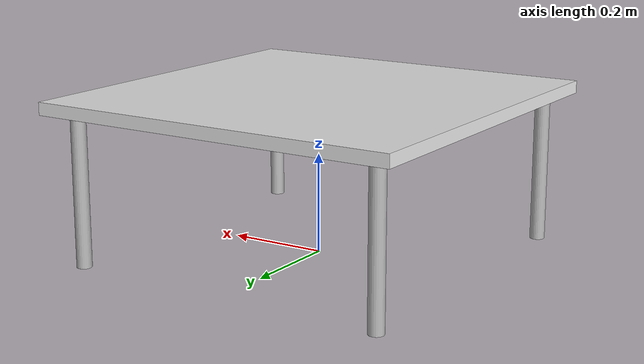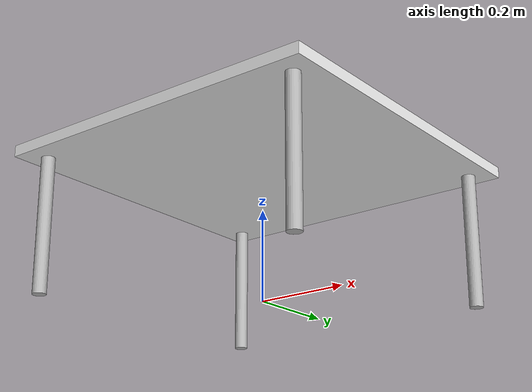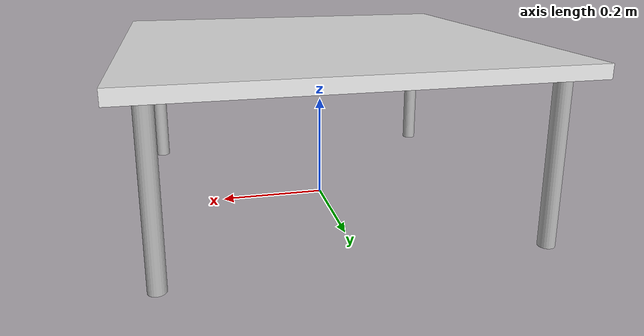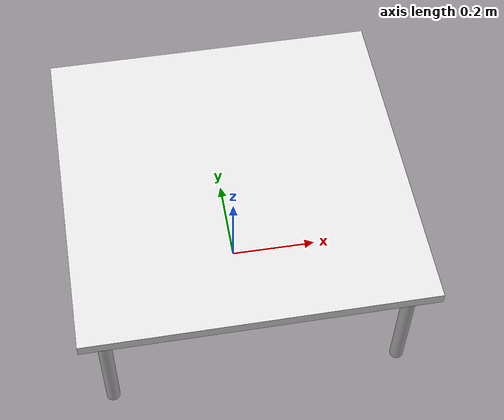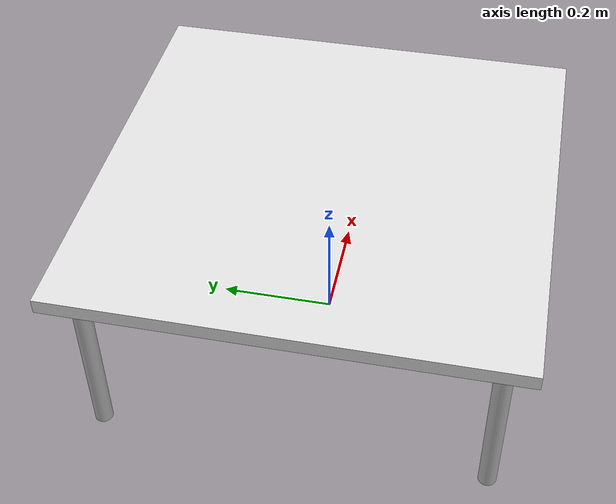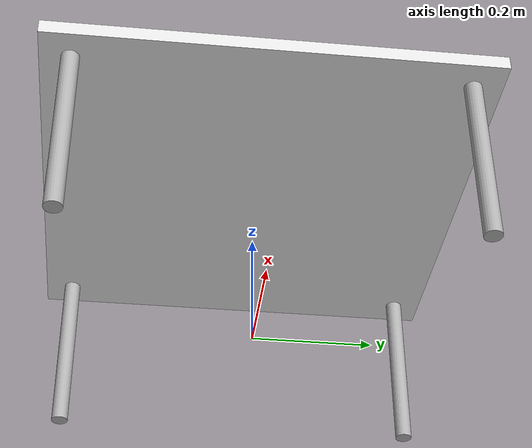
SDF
<?xml version='1.0'?>
<sdf version='1.7'>
  <model name='low_table_square_white'>
    <link name='base_link'>
      <inertial>
        <mass>1</mass>
        <inertia>
          <ixx>0.166667</ixx>
          <ixy>0</ixy>
          <ixz>0</ixz>
          <iyy>0.166667</iyy>
          <iyz>0</iyz>
          <izz>0.166667</izz>
        </inertia>
        <pose>0 0 0 0 -0 0</pose>
      </inertial>
      <pose>0 0 0 0 -0 0</pose>
      <visual name='visual'>
        <pose>0 0 0.3125 0 -0 0</pose>
        <geometry>
          <box>
            <size>0.75 0.75 0.025</size>
          </box>
        </geometry>
        <material>
          <diffuse>0.9 0.9 0.9 1</diffuse>
        </material>
      </visual>
      <collision name='collision'>
        <pose>0 0 0.3125 0 -0 0</pose>
        <geometry>
          <box>
            <size>0.75 0.75 0.025</size>
          </box>
        </geometry>
      </collision>
    </link>
    <link name='leg1'>
      <inertial>
        <mass>1</mass>
        <inertia>
          <ixx>0.145833</ixx>
          <ixy>0</ixy>
          <ixz>0</ixz>
          <iyy>0.145833</iyy>
          <iyz>0</iyz>
          <izz>0.125</izz>
        </inertia>
        <pose>0 0 0 0 -0 0</pose>
      </inertial>
      <pose>0.325 -0.325 0.15 0 -0 0</pose>
      <visual name='visual'>
        <pose>0 0 0 0 -0 0</pose>
        <geometry>
          <cylinder>
            <radius>0.015</radius>
            <length>0.3</length>
          </cylinder>
        </geometry>
        <material>
          <diffuse>0.7 0.7 0.7 1</diffuse>
        </material>
      </visual>
    </link>
    <link name='leg2'>
      <inertial>
        <mass>1</mass>
        <inertia>
          <ixx>0.145833</ixx>
          <ixy>0</ixy>
          <ixz>0</ixz>
          <iyy>0.145833</iyy>
          <iyz>0</iyz>
          <izz>0.125</izz>
        </inertia>
        <pose>0 0 0 0 -0 0</pose>
      </inertial>
      <pose>-0.325 -0.325 0.15 0 -0 0</pose>
      <visual name='visual'>
        <pose>0 0 0 0 -0 0</pose>
        <geometry>
          <cylinder>
            <radius>0.015</radius>
            <length>0.3</length>
          </cylinder>
        </geometry>
        <material>
          <diffuse>0.7 0.7 0.7 1</diffuse>
        </material>
      </visual>
    </link>
    <link name='leg3'>
      <inertial>
        <mass>1</mass>
        <inertia>
          <ixx>0.145833</ixx>
          <ixy>0</ixy>
          <ixz>0</ixz>
          <iyy>0.145833</iyy>
          <iyz>0</iyz>
          <izz>0.125</izz>
        </inertia>
        <pose>0 0 0 0 -0 0</pose>
      </inertial>
      <pose>0.325 0.325 0.15 0 -0 0</pose>
      <visual name='visual'>
        <pose>0 0 0 0 -0 0</pose>
        <geometry>
          <cylinder>
            <radius>0.015</radius>
            <length>0.3</length>
          </cylinder>
        </geometry>
        <material>
          <diffuse>0.7 0.7 0.7 1</diffuse>
        </material>
      </visual>
    </link>
    <link name='leg4'>
      <inertial>
        <mass>1</mass>
        <inertia>
          <ixx>0.145833</ixx>
          <ixy>0</ixy>
          <ixz>0</ixz>
          <iyy>0.145833</iyy>
          <iyz>0</iyz>
          <izz>0.125</izz>
        </inertia>
        <pose>0 0 0 0 -0 0</pose>
      </inertial>
      <pose>-0.325 0.325 0.15 0 -0 0</pose>
      <visual name='visual'>
        <pose>0 0 0 0 -0 0</pose>
        <geometry>
          <cylinder>
            <radius>0.015</radius>
            <length>0.3</length>
          </cylinder>
        </geometry>
        <material>
          <diffuse>0.7 0.7 0.7 1</diffuse>
        </material>
      </visual>
    </link>
    <joint name='link_0_JOINT_0' type='fixed'>
      <parent>base_link</parent>
      <child>leg1</child>
      <pose>0 0 0 0 -0 0</pose>
    </joint>
    <joint name='link_0_JOINT_1' type='fixed'>
      <parent>base_link</parent>
      <child>leg2</child>
      <pose>0 0 0 0 -0 0</pose>
    </joint>
    <joint name='link_0_JOINT_3' type='fixed'>
      <parent>base_link</parent>
      <child>leg3</child>
      <pose>0 0 0 0 -0 0</pose>
    </joint>
    <joint name='link_0_JOINT_4' type='fixed'>
      <parent>base_link</parent>
      <child>leg4</child>
      <pose>0 0 0 0 -0 0</pose>
    </joint>
  </model>
</sdf>
